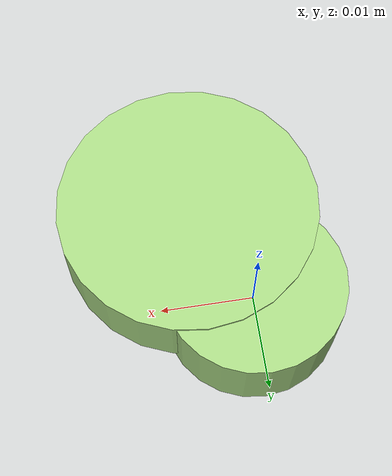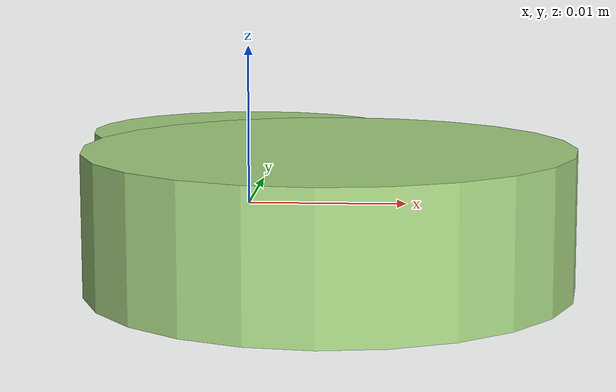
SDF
<?xml version="1.0" ?>
<!-- |    This document was autogenerated by xmacro from data/veggie_template/veggie_base.sdf.xacro  | -->
<!-- |    EDITING THIS FILE BY HAND IS NOT RECOMMENDED                                               | -->
<sdf version="1.8">
	<!-- Parameters -->
	<!-- Base -->
	<!-- Joint 0 -->
	<!-- Link 1 -->
	<!-- Joint 1 -->
	<!-- Link 2 -->
	<!-- Primitives -->
	<!-- All dimensions are half -->
	<!-- Object -->
	<model name="veggie">
		<!-- link0 -->
		<link name="link0">
			<inertial>
				<mass>0.002789799525262955</mass>
				<inertia>
					<ixx>8.641630648571689e-08</ixx>
					<ixy>0</ixy>
					<ixz>0</ixz>
					<iyy>8.641630648571689e-08</iyy>
					<iyz>0</iyz>
					<izz>1.3170148537738937e-07</izz>
				</inertia>
			</inertial>
			<visual name="link0_visual">
				<pose>0 0 0 0 0 0</pose>
				<geometry>
					<cylinder>
						<radius>0.009716812811162467</radius>
						<length>0.009405338597608816</length>
					</cylinder>
				</geometry>
				<material>
					<ambient>0.659 0.839 0.514 1</ambient>
					<diffuse>0.659 0.839 0.514 1</diffuse>
					<specular>0 0 0 0</specular>
					<emissive>0 0 0 1</emissive>
				</material>
			</visual>
			<collision name="link0_collision">
				<pose>0 0 0 0 0 0 </pose>
				<geometry>
					<cylinder>
						<radius>0.009716812811162467</radius>
						<length>0.009405338597608816</length>
					</cylinder>
				</geometry>
			</collision>
		</link>
		<!-- link1 -->
		<joint name="joint0" type="fixed">
			<pose relative_to="link0">0.005571998940298296 -0.009749850535530236 0.0009123267841221397 0.0 0.0 0.0</pose>
			<parent>link0</parent>
			<child>link1</child>
		</joint>
		<link name="link1">
			<pose relative_to="joint0">0 0 0 0 0 0</pose>
			<inertial>
				<mass>0.00508959029205623</mass>
				<inertia>
					<ixx>2.8174466459392294e-07</ixx>
					<ixy>0</ixy>
					<ixz>0</ixz>
					<iyy>2.8174466459392294e-07</iyy>
					<iyz>0</iyz>
					<izz>5.075126128178906e-07</izz>
				</inertia>
			</inertial>
			<visual name="link1_visual">
				<pose>0 0 0 0 0 0</pose>
				<geometry>
					<cylinder>
						<radius>0.014122025978989</radius>
						<length>0.008123401577151258</length>
					</cylinder>
				</geometry>
				<material>
					<ambient>0.659 0.839 0.514 1</ambient>
					<diffuse>0.659 0.839 0.514 1</diffuse>
					<specular>0 0 0 0</specular>
					<emissive>0 0 0 1</emissive>
				</material>
			</visual>
			<collision name="link1_collision">
				<pose>0 0 0 0 0 0 </pose>
				<geometry>
					<cylinder>
						<radius>0.014122025978989</radius>
						<length>0.008123401577151258</length>
					</cylinder>
				</geometry>
			</collision>
		</link>
		<!-- link2 -->
	</model>
</sdf>
